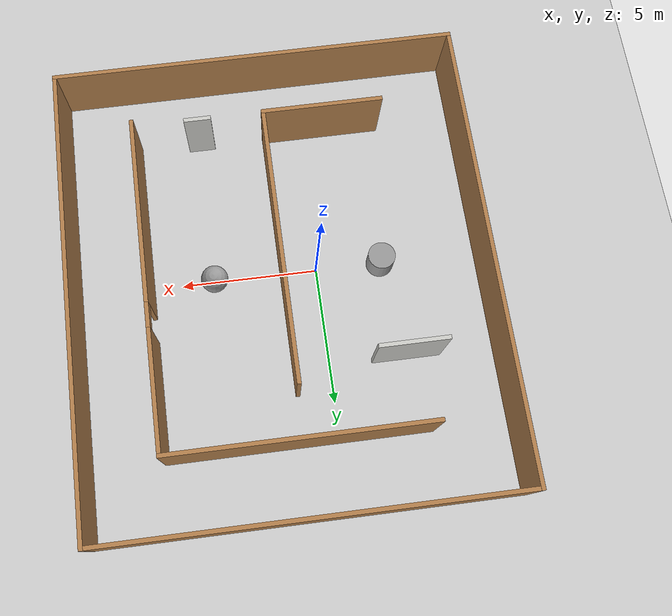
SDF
<?xml version="1.0"?>
<sdf version='1.6'>
  <world name='default'>
    <!-- Here is where we place objects inside our world -->

    <model name='ground_plane'>
      <static>1</static>
      <link name='link'>
        <collision name='collision'>
          <geometry>
            <plane>
              <normal>0 0 1</normal>
              <size>100 100</size>
            </plane>
          </geometry>
          <surface>
            <friction>
              <ode>
                <mu>100</mu>
                <mu2>50</mu2>
              </ode>
              <torsional>
                <ode />
              </torsional>
            </friction>
            <contact>
              <ode />
            </contact>
            <bounce />
          </surface>
          <max_contacts>10</max_contacts>
        </collision>
        <visual name='visual'>
          <cast_shadows>0</cast_shadows>
          <geometry>
            <plane>
              <normal>0 0 1</normal>
              <size>100 100</size>
            </plane>
          </geometry>
          <material>
            <script>
              <uri>file://media/materials/scripts/gazebo.material</uri>
              <name>Gazebo/Grey</name>
            </script>
          </material>
        </visual>
        <self_collide>0</self_collide>
        <enable_wind>0</enable_wind>
        <kinematic>0</kinematic>
      </link>
    </model>

    <model name='maze'>
      <pose>1.38348 0.502875 0 0 -0 0</pose>
      <link name='Wall_10'>
        <collision name='Wall_10_Collision'>
          <geometry>
            <box>
              <size>10.25 0.15 2.5</size>
            </box>
          </geometry>
          <pose>0 0 1.25 0 -0 0</pose>
          <max_contacts>10</max_contacts>
          <surface>
            <contact>
              <ode />
            </contact>
            <bounce />
            <friction>
              <torsional>
                <ode />
              </torsional>
              <ode />
            </friction>
          </surface>
        </collision>
        <visual name='Wall_10_Visual'>
          <pose>0 0 1.25 0 -0 0</pose>
          <geometry>
            <box>
              <size>10.25 0.15 2.5</size>
            </box>
          </geometry>
          <material>
            <script>
              <uri>file://media/materials/scripts/gazebo.material</uri>
              <name>Gazebo/Wood</name>
            </script>
            <ambient>1 1 1 1</ambient>
          </material>
          <meta>
            <layer>0</layer>
          </meta>
        </visual>
        <pose>-0.097607 -1.0209 0 0 -0 -1.5708</pose>
        <self_collide>0</self_collide>
        <enable_wind>0</enable_wind>
        <kinematic>0</kinematic>
      </link>
      <link name='Wall_11'>
        <collision name='Wall_11_Collision'>
          <geometry>
            <box>
              <size>4.5 0.15 2.5</size>
            </box>
          </geometry>
          <pose>0 0 1.25 0 -0 0</pose>
          <max_contacts>10</max_contacts>
          <surface>
            <contact>
              <ode />
            </contact>
            <bounce />
            <friction>
              <torsional>
                <ode />
              </torsional>
              <ode />
            </friction>
          </surface>
        </collision>
        <visual name='Wall_11_Visual'>
          <pose>0 0 1.25 0 -0 0</pose>
          <geometry>
            <box>
              <size>4.5 0.15 2.5</size>
            </box>
          </geometry>
          <material>
            <script>
              <uri>file://media/materials/scripts/gazebo.material</uri>
              <name>Gazebo/Wood</name>
            </script>
            <ambient>1 1 1 1</ambient>
          </material>
          <meta>
            <layer>0</layer>
          </meta>
        </visual>
        <pose>-2.27261 -6.0709 0 0 -0 3.14159</pose>
        <self_collide>0</self_collide>
        <enable_wind>0</enable_wind>
        <kinematic>0</kinematic>
      </link>
      <link name='Wall_13'>
        <collision name='Wall_13_Collision'>
          <geometry>
            <box>
              <size>2.5 0.15 2.5</size>
            </box>
          </geometry>
          <pose>0 0 1.25 0 -0 0</pose>
          <max_contacts>10</max_contacts>
          <surface>
            <contact>
              <ode />
            </contact>
            <bounce />
            <friction>
              <torsional>
                <ode />
              </torsional>
              <ode />
            </friction>
          </surface>
        </collision>
        <visual name='Wall_13_Visual'>
          <pose>0 0 1.25 0 -0 0</pose>
          <geometry>
            <box>
              <size>2.5 0.15 2.5</size>
            </box>
          </geometry>
          <material>
            <script>
              <uri>file://media/materials/scripts/gazebo.material</uri>
              <name>Gazebo/CeilingTiled</name>
            </script>
            <ambient>1 1 1 1</ambient>
          </material>
          <meta>
            <layer>0</layer>
          </meta>
        </visual>
        <pose>-4.16393 3.15013 0 0 -0 3.14159</pose>
        <self_collide>0</self_collide>
        <enable_wind>0</enable_wind>
        <kinematic>0</kinematic>
      </link>
      <link name='Wall_15'>
        <collision name='Wall_15_Collision'>
          <geometry>
            <box>
              <size>1 0.15 2.5</size>
            </box>
          </geometry>
          <pose>0 0 1.25 0 -0 0</pose>
          <max_contacts>10</max_contacts>
          <surface>
            <contact>
              <ode />
            </contact>
            <bounce />
            <friction>
              <torsional>
                <ode />
              </torsional>
              <ode />
            </friction>
          </surface>
        </collision>
        <visual name='Wall_15_Visual'>
          <pose>0 0 1.25 0 -0 0</pose>
          <geometry>
            <box>
              <size>1 0.15 2.5</size>
            </box>
          </geometry>
          <material>
            <script>
              <uri>file://media/materials/scripts/gazebo.material</uri>
              <name>Gazebo/CeilingTiled</name>
            </script>
            <ambient>1 1 1 1</ambient>
          </material>
          <meta>
            <layer>0</layer>
          </meta>
        </visual>
        <pose>2.33421 -6.0585 0 0 -0 3.14159</pose>
        <self_collide>0</self_collide>
        <enable_wind>0</enable_wind>
        <kinematic>0</kinematic>
      </link>
      <link name='Wall_2'>
        <collision name='Wall_2_Collision'>
          <geometry>
            <box>
              <size>15 0.15 2.5</size>
            </box>
          </geometry>
          <pose>0 0 1.25 0 -0 0</pose>
          <max_contacts>10</max_contacts>
          <surface>
            <contact>
              <ode />
            </contact>
            <bounce />
            <friction>
              <torsional>
                <ode />
              </torsional>
              <ode />
            </friction>
          </surface>
        </collision>
        <visual name='Wall_2_Visual'>
          <pose>0 0 1.25 0 -0 0</pose>
          <geometry>
            <box>
              <size>15 0.15 2.5</size>
            </box>
          </geometry>
          <material>
            <script>
              <uri>file://media/materials/scripts/gazebo.material</uri>
              <name>Gazebo/Wood</name>
            </script>
            <ambient>1 1 1 1</ambient>
          </material>
          <meta>
            <layer>0</layer>
          </meta>
        </visual>
        <pose>0 -8.425 0 0 -0 0</pose>
        <self_collide>0</self_collide>
        <enable_wind>0</enable_wind>
        <kinematic>0</kinematic>
      </link>
      <link name='Wall_3'>
        <collision name='Wall_3_Collision'>
          <geometry>
            <box>
              <size>17 0.15 2.5</size>
            </box>
          </geometry>
          <pose>0 0 1.25 0 -0 0</pose>
          <max_contacts>10</max_contacts>
          <surface>
            <contact>
              <ode />
            </contact>
            <bounce />
            <friction>
              <torsional>
                <ode />
              </torsional>
              <ode />
            </friction>
          </surface>
        </collision>
        <visual name='Wall_3_Visual'>
          <pose>0 0 1.25 0 -0 0</pose>
          <geometry>
            <box>
              <size>17 0.15 2.5</size>
            </box>
          </geometry>
          <material>
            <script>
              <uri>file://media/materials/scripts/gazebo.material</uri>
              <name>Gazebo/Wood</name>
            </script>
            <ambient>1 1 1 1</ambient>
          </material>
          <meta>
            <layer>0</layer>
          </meta>
        </visual>
        <pose>7.425 -0 0 0 -0 1.5708</pose>
        <self_collide>0</self_collide>
        <enable_wind>0</enable_wind>
        <kinematic>0</kinematic>
      </link>
      <link name='Wall_4'>
        <collision name='Wall_4_Collision'>
          <geometry>
            <box>
              <size>15 0.15 2.5</size>
            </box>
          </geometry>
          <pose>0 0 1.25 0 -0 0</pose>
          <max_contacts>10</max_contacts>
          <surface>
            <contact>
              <ode />
            </contact>
            <bounce />
            <friction>
              <torsional>
                <ode />
              </torsional>
              <ode />
            </friction>
          </surface>
        </collision>
        <visual name='Wall_4_Visual'>
          <pose>0 0 1.25 0 -0 0</pose>
          <geometry>
            <box>
              <size>15 0.15 2.5</size>
            </box>
          </geometry>
          <material>
            <script>
              <uri>file://media/materials/scripts/gazebo.material</uri>
              <name>Gazebo/Wood</name>
            </script>
            <ambient>1 1 1 1</ambient>
          </material>
          <meta>
            <layer>0</layer>
          </meta>
        </visual>
        <pose>0 8.425 0 0 -0 3.14159</pose>
        <self_collide>0</self_collide>
        <enable_wind>0</enable_wind>
        <kinematic>0</kinematic>
      </link>
      <link name='Wall_5'>
        <collision name='Wall_5_Collision'>
          <geometry>
            <box>
              <size>17 0.15 2.5</size>
            </box>
          </geometry>
          <pose>0 0 1.25 0 -0 0</pose>
          <max_contacts>10</max_contacts>
          <surface>
            <contact>
              <ode />
            </contact>
            <bounce />
            <friction>
              <torsional>
                <ode />
              </torsional>
              <ode />
            </friction>
          </surface>
        </collision>
        <visual name='Wall_5_Visual'>
          <pose>0 0 1.25 0 -0 0</pose>
          <geometry>
            <box>
              <size>17 0.15 2.5</size>
            </box>
          </geometry>
          <material>
            <script>
              <uri>file://media/materials/scripts/gazebo.material</uri>
              <name>Gazebo/Wood</name>
            </script>
            <ambient>1 1 1 1</ambient>
          </material>
          <meta>
            <layer>0</layer>
          </meta>
        </visual>
        <pose>-7.425 -0 0 0 -0 -1.5708</pose>
        <self_collide>0</self_collide>
        <enable_wind>0</enable_wind>
        <kinematic>0</kinematic>
      </link>
      <link name='Wall_7'>
        <collision name='Wall_7_Collision'>
          <geometry>
            <box>
              <size>9.5 0.15 2.5</size>
            </box>
          </geometry>
          <pose>0 0 1.25 0 -0 0</pose>
          <max_contacts>10</max_contacts>
          <surface>
            <contact>
              <ode />
            </contact>
            <bounce />
            <friction>
              <torsional>
                <ode />
              </torsional>
              <ode />
            </friction>
          </surface>
        </collision>
        <visual name='Wall_7_Visual'>
          <pose>0 0 1.25 0 -0 0</pose>
          <geometry>
            <box>
              <size>9.5 0.15 2.5</size>
            </box>
          </geometry>
          <material>
            <script>
              <uri>file://media/materials/scripts/gazebo.material</uri>
              <name>Gazebo/Wood</name>
            </script>
            <ambient>1 1 1 1</ambient>
          </material>
          <meta>
            <layer>0</layer>
          </meta>
        </visual>
        <pose>0.060339 5.8609 0 0 -0 0</pose>
        <self_collide>0</self_collide>
        <enable_wind>0</enable_wind>
        <kinematic>0</kinematic>
      </link>
      <link name='Wall_8'>
        <pose>4.73534 -0.189104 0 0 -0 -1.5708</pose>
        <visual name='Wall_8_Visual_0'>
          <pose>-3.92614 0 1.25 0 -0 0</pose>
          <geometry>
            <box>
              <size>4.39772 0.15 2.5</size>
            </box>
          </geometry>
          <material>
            <script>
              <uri>file://media/materials/scripts/gazebo.material</uri>
              <name>Gazebo/Wood</name>
            </script>
            <ambient>1 1 1 1</ambient>
          </material>
          <meta>
            <layer>0</layer>
          </meta>
        </visual>
        <collision name='Wall_8_Collision_0'>
          <geometry>
            <box>
              <size>4.39772 0.15 2.5</size>
            </box>
          </geometry>
          <pose>-3.92614 0 1.25 0 -0 0</pose>
          <max_contacts>10</max_contacts>
          <surface>
            <contact>
              <ode />
            </contact>
            <bounce />
            <friction>
              <torsional>
                <ode />
              </torsional>
              <ode />
            </friction>
          </surface>
        </collision>
        <visual name='Wall_8_Visual_1'>
          <pose>2.64886 0 1.25 0 -0 0</pose>
          <geometry>
            <box>
              <size>6.95228 0.15 2.5</size>
            </box>
          </geometry>
          <material>
            <script>
              <uri>file://media/materials/scripts/gazebo.material</uri>
              <name>Gazebo/Wood</name>
            </script>
            <ambient>1 1 1 1</ambient>
          </material>
          <meta>
            <layer>0</layer>
          </meta>
        </visual>
        <collision name='Wall_8_Collision_1'>
          <geometry>
            <box>
              <size>6.95228 0.15 2.5</size>
            </box>
          </geometry>
          <pose>2.64886 0 1.25 0 -0 0</pose>
          <max_contacts>10</max_contacts>
          <surface>
            <contact>
              <ode />
            </contact>
            <bounce />
            <friction>
              <torsional>
                <ode />
              </torsional>
              <ode />
            </friction>
          </surface>
        </collision>
        <visual name='Wall_8_Visual_2'>
          <pose>-1.27728 0 2.25 0 -0 0</pose>
          <geometry>
            <box>
              <size>0.9 0.15 0.5</size>
            </box>
          </geometry>
          <material>
            <script>
              <uri>file://media/materials/scripts/gazebo.material</uri>
              <name>Gazebo/Wood</name>
            </script>
            <ambient>1 1 1 1</ambient>
          </material>
          <meta>
            <layer>0</layer>
          </meta>
        </visual>
        <collision name='Wall_8_Collision_2'>
          <geometry>
            <box>
              <size>0.9 0.15 0.5</size>
            </box>
          </geometry>
          <pose>-1.27728 0 2.25 0 -0 0</pose>
          <max_contacts>10</max_contacts>
          <surface>
            <contact>
              <ode />
            </contact>
            <bounce />
            <friction>
              <torsional>
                <ode />
              </torsional>
              <ode />
            </friction>
          </surface>
        </collision>
        <self_collide>0</self_collide>
        <enable_wind>0</enable_wind>
        <kinematic>0</kinematic>
      </link>
      <static>1</static>
    </model>

    <model name='unit_cylinder'>
      <pose>-2.39545 0.006416 0.5 0 -0 0</pose>
      <link name='link'>
        <inertial>
          <mass>1</mass>
          <inertia>
            <ixx>0.145833</ixx>
            <ixy>0</ixy>
            <ixz>0</ixz>
            <iyy>0.145833</iyy>
            <iyz>0</iyz>
            <izz>0.125</izz>
          </inertia>
          <pose>0 0 0 0 -0 0</pose>
        </inertial>
        <collision name='collision'>
          <geometry>
            <cylinder>
              <radius>0.5</radius>
              <length>1</length>
            </cylinder>
          </geometry>
          <max_contacts>10</max_contacts>
          <surface>
            <contact>
              <ode/>
            </contact>
            <bounce/>
            <friction>
              <torsional>
                <ode/>
              </torsional>
              <ode/>
            </friction>
          </surface>
        </collision>
        <visual name='visual'>
          <geometry>
            <cylinder>
              <radius>0.5</radius>
              <length>1</length>
            </cylinder>
          </geometry>
          <material>
            <script>
              <name>Gazebo/Grey</name>
              <uri>file://media/materials/scripts/gazebo.material</uri>
            </script>
          </material>
        </visual>
        <self_collide>0</self_collide>
        <enable_wind>0</enable_wind>
        <kinematic>0</kinematic>
      </link>
    </model>
    <model name='unit_sphere'>
      <pose>3.78379 -0.013559 0.5 0 -0 0</pose>
      <link name='link'>
        <inertial>
          <mass>1</mass>
          <inertia>
            <ixx>0.1</ixx>
            <ixy>0</ixy>
            <ixz>0</ixz>
            <iyy>0.1</iyy>
            <iyz>0</iyz>
            <izz>0.1</izz>
          </inertia>
          <pose>0 0 0 0 -0 0</pose>
        </inertial>
        <collision name='collision'>
          <geometry>
            <sphere>
              <radius>0.5</radius>
            </sphere>
          </geometry>
          <max_contacts>10</max_contacts>
          <surface>
            <contact>
              <ode/>
            </contact>
            <bounce/>
            <friction>
              <torsional>
                <ode/>
              </torsional>
              <ode/>
            </friction>
          </surface>
        </collision>
        <visual name='visual'>
          <geometry>
            <sphere>
              <radius>0.5</radius>
            </sphere>
          </geometry>
          <material>
            <script>
              <name>Gazebo/Grey</name>
              <uri>file://media/materials/scripts/gazebo.material</uri>
            </script>
          </material>
        </visual>
        <self_collide>0</self_collide>
        <enable_wind>0</enable_wind>
        <kinematic>0</kinematic>
      </link>
    </model>

    <!-- Define the lighting of the world -->
    <light name='sun' type='directional'>
      <cast_shadows>1</cast_shadows>
      <pose frame=''>0 0 10 0 -0 0</pose>
      <diffuse>0.8 0.8 0.8 1</diffuse>
      <specular>0.2 0.2 0.2 1</specular>
      <attenuation>
        <range>1000</range>
        <constant>0.9</constant>
        <linear>0.01</linear>
        <quadratic>0.001</quadratic>
      </attenuation>
      <direction>-0.5 0.1 -0.9</direction>
    </light>

    <!-- Define the physics of the world -->
    <gravity>0 0 -9.8</gravity>
    <magnetic_field>6e-06 2.3e-05 -4.2e-05</magnetic_field>
    <atmosphere type='adiabatic' />
    <physics name='default_physics' default='0' type='ode'>
      <max_step_size>0.001</max_step_size>
      <real_time_factor>1</real_time_factor>
      <real_time_update_rate>1000</real_time_update_rate>
    </physics>
    <scene>
      <ambient>0.4 0.4 0.4 1</ambient>
      <background>0.7 0.7 0.7 1</background>
      <shadows>0</shadows>
    </scene>
    <audio>
      <device>default</device>
    </audio>
    <wind />

    <!-- Define the latitude, longitude, and elevation -->
    <spherical_coordinates>
      <surface_model>EARTH_WGS84</surface_model>
      <latitude_deg>47.840640</latitude_deg>
      <longitude_deg>10.619944</longitude_deg>
      <elevation>740.0</elevation>
      <heading_deg>180</heading_deg>
    </spherical_coordinates>

    <!-- Define the user perspective of the world -->
    <gui fullscreen='0'>
      <camera name='user_camera'>
        <pose frame=''>35.0 3.5 43.0 0.0 0.85 -3.1295</pose>
        <view_controller>orbit</view_controller>
        <projection_type>perspective</projection_type>
      </camera>
    </gui>

    <!-- Import our own robot -->
  </world>
</sdf>
